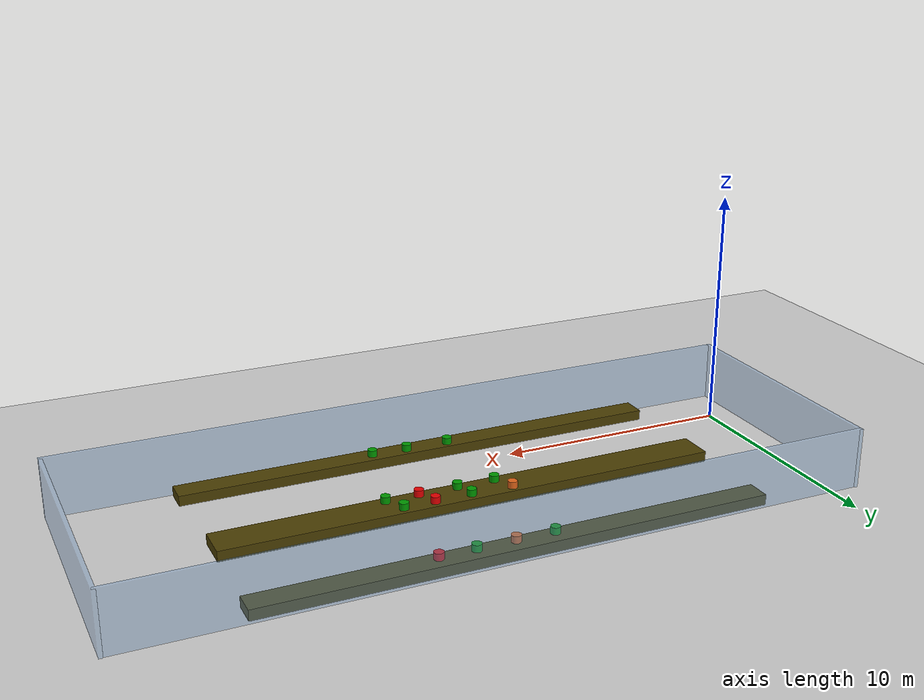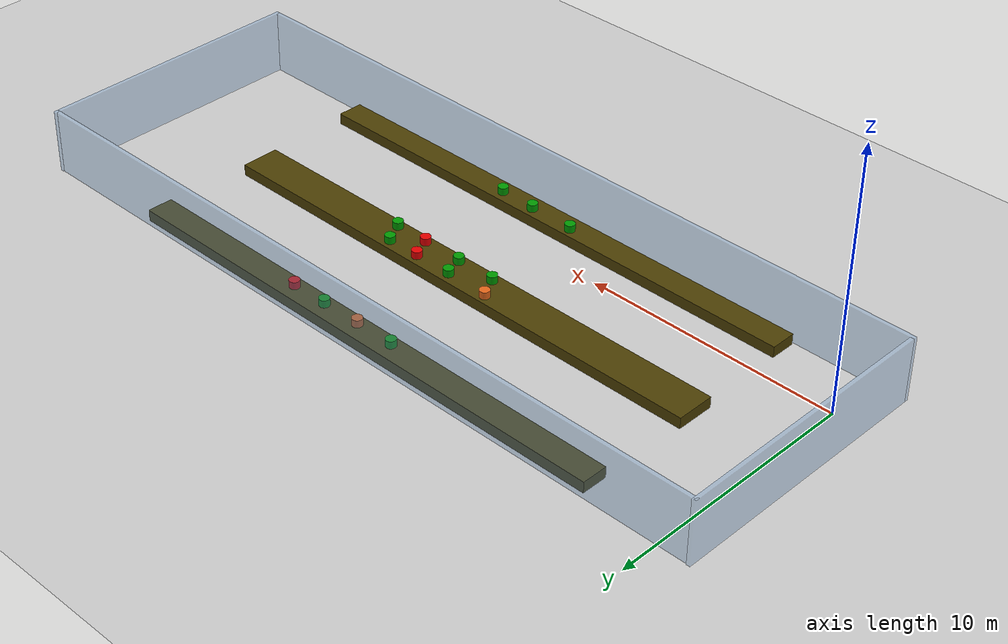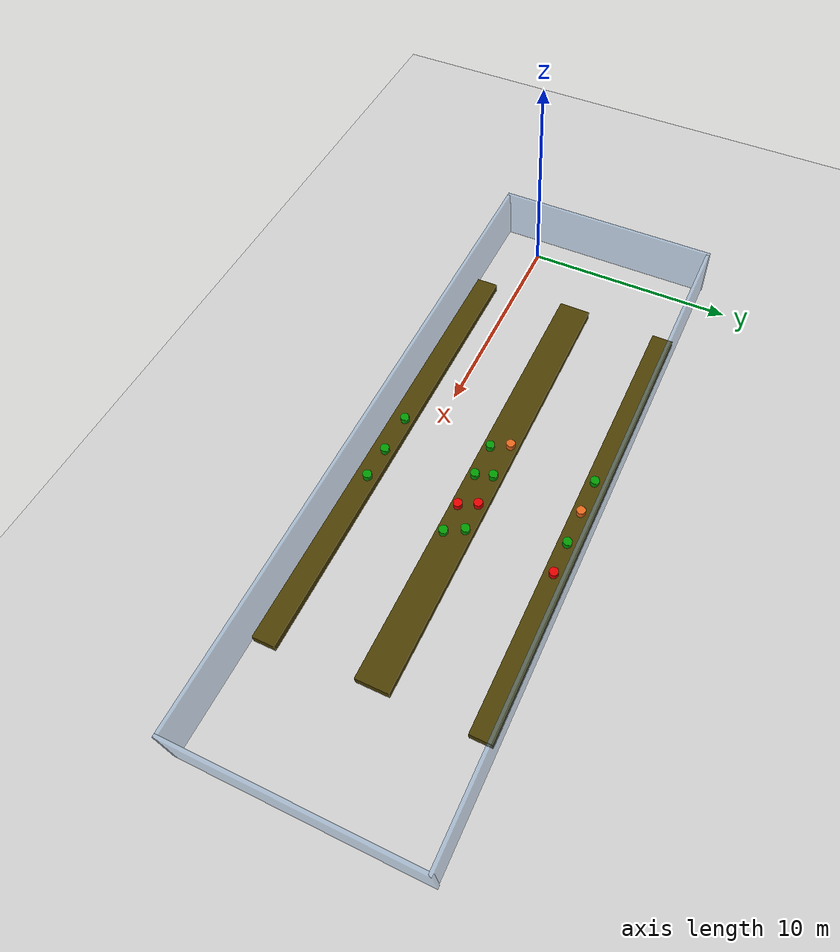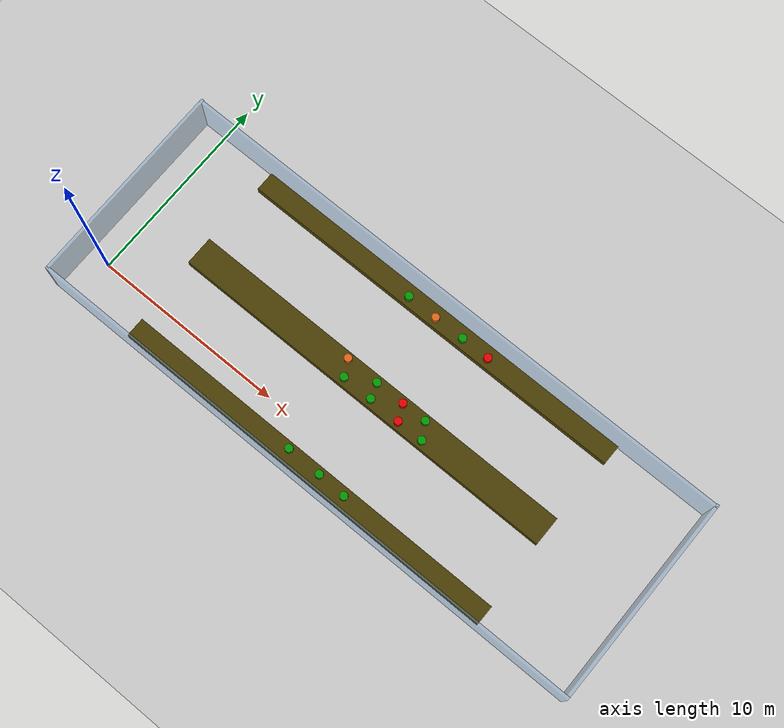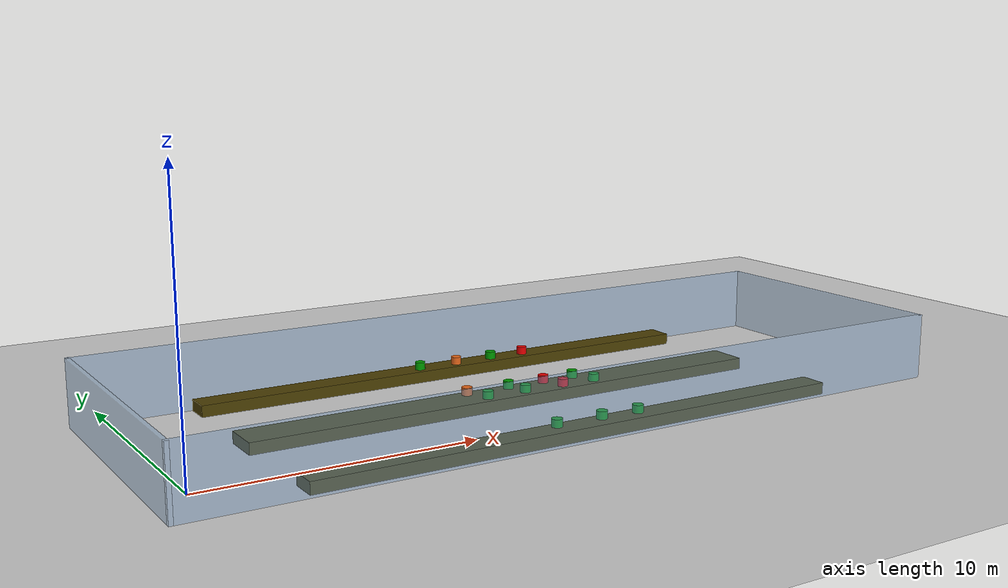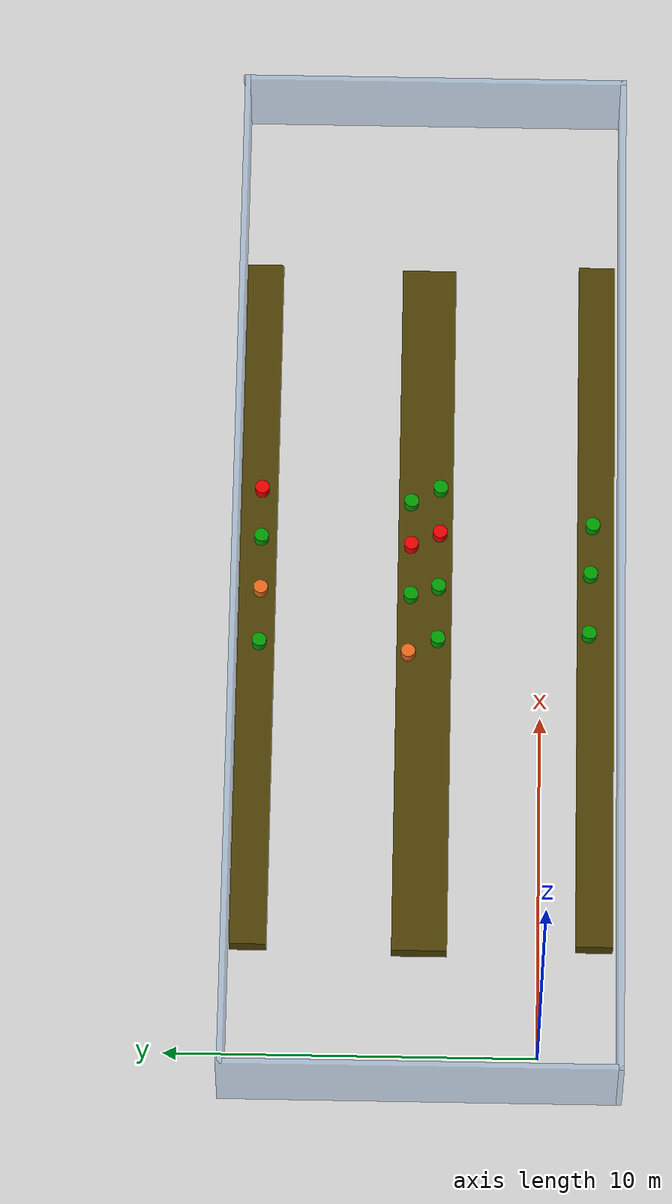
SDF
<sdf version="1.7">
 <world name="default">
  <model name="ground_plane">
   <static>1</static>
   <link name="link">
    <collision name="collision">
     <geometry><plane><normal>0 0 1</normal><size>100 100</size></plane></geometry>
     <surface><friction><ode><mu>100</mu><mu2>50</mu2></ode></friction></surface>
    </collision>
    <visual name="visual">
     <cast_shadows>0</cast_shadows>
     <geometry><plane><normal>0 0 1</normal><size>100 100</size></plane></geometry>
     <material>
      <script><uri>file://media/materials/scripts/gazebo.material</uri><name>Gazebo/Grey</name></script>
     </material>
    </visual>
   </link>
  </model>
  <model name="Test_pot_green_clone_2">
   <link name="link_0">
    <inertial>
     <mass>0.044841</mass>
     <inertia>
      <ixx>0.00074807</ixx>
      <ixy>0</ixy>
      <ixz>0</ixz>
      <iyy>0.00074807</iyy>
      <iyz>0</iyz>
      <izz>0.00086495</izz>
     </inertia>
    </inertial>
    <pose>3e-06 1e-06 0 0 -0 0</pose>
    <visual name="visual">
     <geometry><cylinder><radius>0.196415</radius><length>0.290612</length></cylinder></geometry>
     <material>
      <lighting>1</lighting>
      <script><uri>file://media/materials/scripts/gazebo.material</uri><name>Gazebo/Grey</name></script>
      <shader type="pixel"><normal_map>__default__</normal_map></shader>
      <diffuse>0 0.6 0 0</diffuse>
      <ambient>0.3 0.3 0.3 1</ambient>
      <specular>0.01 0.01 0.01 1</specular>
      <emissive>0 0 0 1</emissive>
     </material>
    </visual>
    <collision name="collision">
     <geometry><cylinder><radius>0.196415</radius><length>0.290612</length></cylinder></geometry>
     <surface>
      <friction>
       <ode><mu>1</mu><mu2>1</mu2><fdir1>0 0 0</fdir1><slip1>0</slip1><slip2>0</slip2></ode>
       <torsional>
        <coefficient>1</coefficient>
        <patch_radius>0</patch_radius>
        <surface_radius>0</surface_radius>
        <use_patch_radius>1</use_patch_radius>
        <ode><slip>0</slip></ode>
       </torsional>
      </friction>
      <bounce><restitution_coefficient>0</restitution_coefficient><threshold>1e+06</threshold></bounce>
      <contact>
       <collide_without_contact>0</collide_without_contact>
       <collide_without_contact_bitmask>1</collide_without_contact_bitmask>
       <collide_bitmask>1</collide_bitmask>
       <ode>
        <soft_cfm>0</soft_cfm>
        <soft_erp>0.2</soft_erp>
        <kp>1e+13</kp>
        <kd>1</kd>
        <max_vel>0.01</max_vel>
        <min_depth>0</min_depth>
       </ode>
       <bullet>
        <split_impulse>1</split_impulse>
        <split_impulse_penetration_threshold>-0.01</split_impulse_penetration_threshold>
        <soft_cfm>0</soft_cfm>
        <soft_erp>0.2</soft_erp>
        <kp>1e+13</kp>
        <kd>1</kd>
       </bullet>
      </contact>
     </surface>
    </collision>
   </link>
   <static>0</static>
   <pose>11.96 7.71035 0.575578 4.9e-05 1e-06 -0.004177</pose>
  </model>
  <model name="Test_pot_green_clone_3">
   <link name="link_0">
    <inertial>
     <mass>0.044841</mass>
     <inertia>
      <ixx>0.00074807</ixx>
      <ixy>0</ixy>
      <ixz>0</ixz>
      <iyy>0.00074807</iyy>
      <iyz>0</iyz>
      <izz>0.00086495</izz>
     </inertia>
    </inertial>
    <pose>3e-06 1e-06 0 0 -0 0</pose>
    <visual name="visual">
     <geometry><cylinder><radius>0.196415</radius><length>0.290612</length></cylinder></geometry>
     <material>
      <lighting>1</lighting>
      <script><uri>file://media/materials/scripts/gazebo.material</uri><name>Gazebo/Grey</name></script>
      <shader type="pixel"><normal_map>__default__</normal_map></shader>
      <diffuse>0 0.6 0 0</diffuse>
      <ambient>0.3 0.3 0.3 1</ambient>
      <specular>0.01 0.01 0.01 1</specular>
      <emissive>0 0 0 1</emissive>
     </material>
    </visual>
    <collision name="collision">
     <geometry><cylinder><radius>0.196415</radius><length>0.290612</length></cylinder></geometry>
     <surface>
      <friction>
       <ode><mu>1</mu><mu2>1</mu2><fdir1>0 0 0</fdir1><slip1>0</slip1><slip2>0</slip2></ode>
       <torsional>
        <coefficient>1</coefficient>
        <patch_radius>0</patch_radius>
        <surface_radius>0</surface_radius>
        <use_patch_radius>1</use_patch_radius>
        <ode><slip>0</slip></ode>
       </torsional>
      </friction>
      <bounce><restitution_coefficient>0</restitution_coefficient><threshold>1e+06</threshold></bounce>
      <contact>
       <collide_without_contact>0</collide_without_contact>
       <collide_without_contact_bitmask>1</collide_without_contact_bitmask>
       <collide_bitmask>1</collide_bitmask>
       <ode>
        <soft_cfm>0</soft_cfm>
        <soft_erp>0.2</soft_erp>
        <kp>1e+13</kp>
        <kd>1</kd>
        <max_vel>0.01</max_vel>
        <min_depth>0</min_depth>
       </ode>
       <bullet>
        <split_impulse>1</split_impulse>
        <split_impulse_penetration_threshold>-0.01</split_impulse_penetration_threshold>
        <soft_cfm>0</soft_cfm>
        <soft_erp>0.2</soft_erp>
        <kp>1e+13</kp>
        <kd>1</kd>
       </bullet>
      </contact>
     </surface>
    </collision>
   </link>
   <static>0</static>
   <pose>15.1495 7.72388 0.575568 7e-06 -4e-06 -0.002778</pose>
  </model>
  <model name="Test_pot_orange_clone">
   <link name="link_0">
    <inertial>
     <mass>0.044841</mass>
     <inertia>
      <ixx>0.00074807</ixx>
      <ixy>0</ixy>
      <ixz>0</ixz>
      <iyy>0.00074807</iyy>
      <iyz>0</iyz>
      <izz>0.00086495</izz>
     </inertia>
    </inertial>
    <pose>3e-06 1e-06 -0 0 -0 0</pose>
    <visual name="visual">
     <geometry><cylinder><radius>0.196415</radius><length>0.290612</length></cylinder></geometry>
     <material>
      <lighting>1</lighting>
      <script><uri>file://media/materials/scripts/gazebo.material</uri><name>Gazebo/Grey</name></script>
      <shader type="pixel"><normal_map>__default__</normal_map></shader>
      <ambient>0.3 0.3 0.3 1</ambient>
      <diffuse>0.9 0.4 0.1 1</diffuse>
      <specular>0.01 0.01 0.01 1</specular>
      <emissive>0 0 0 1</emissive>
     </material>
    </visual>
    <collision name="collision">
     <geometry><cylinder><radius>0.196415</radius><length>0.290612</length></cylinder></geometry>
     <surface>
      <friction>
       <ode><mu>1</mu><mu2>1</mu2><fdir1>0 0 0</fdir1><slip1>0</slip1><slip2>0</slip2></ode>
       <torsional>
        <coefficient>1</coefficient>
        <patch_radius>0</patch_radius>
        <surface_radius>0</surface_radius>
        <use_patch_radius>1</use_patch_radius>
        <ode><slip>0</slip></ode>
       </torsional>
      </friction>
      <bounce><restitution_coefficient>0</restitution_coefficient><threshold>1e+06</threshold></bounce>
      <contact>
       <collide_without_contact>0</collide_without_contact>
       <collide_without_contact_bitmask>1</collide_without_contact_bitmask>
       <collide_bitmask>1</collide_bitmask>
       <ode>
        <soft_cfm>0</soft_cfm>
        <soft_erp>0.2</soft_erp>
        <kp>1e+13</kp>
        <kd>1</kd>
        <max_vel>0.01</max_vel>
        <min_depth>0</min_depth>
       </ode>
       <bullet>
        <split_impulse>1</split_impulse>
        <split_impulse_penetration_threshold>-0.01</split_impulse_penetration_threshold>
        <soft_cfm>0</soft_cfm>
        <soft_erp>0.2</soft_erp>
        <kp>1e+13</kp>
        <kd>1</kd>
       </bullet>
      </contact>
     </surface>
    </collision>
   </link>
   <static>0</static>
   <pose>13.5652 7.70667 0.57557 -3e-06 -2e-06 -0.00832</pose>
  </model>
  <model name="Test_pot_orange_clone_2">
   <link name="link_0">
    <inertial>
     <mass>0.044841</mass>
     <inertia>
      <ixx>0.00074807</ixx>
      <ixy>0</ixy>
      <ixz>0</ixz>
      <iyy>0.00074807</iyy>
      <iyz>0</iyz>
      <izz>0.00086495</izz>
     </inertia>
    </inertial>
    <pose>3e-06 1e-06 -0 0 -0 0</pose>
    <visual name="visual">
     <geometry><cylinder><radius>0.196415</radius><length>0.290612</length></cylinder></geometry>
     <material>
      <lighting>1</lighting>
      <script><uri>file://media/materials/scripts/gazebo.material</uri><name>Gazebo/Grey</name></script>
      <shader type="pixel"><normal_map>__default__</normal_map></shader>
      <ambient>0.3 0.3 0.3 1</ambient>
      <diffuse>0.9 0.4 0.1 1</diffuse>
      <specular>0.01 0.01 0.01 1</specular>
      <emissive>0 0 0 1</emissive>
     </material>
    </visual>
    <collision name="collision">
     <geometry><cylinder><radius>0.196415</radius><length>0.290612</length></cylinder></geometry>
     <surface>
      <friction>
       <ode><mu>1</mu><mu2>1</mu2><fdir1>0 0 0</fdir1><slip1>0</slip1><slip2>0</slip2></ode>
       <torsional>
        <coefficient>1</coefficient>
        <patch_radius>0</patch_radius>
        <surface_radius>0</surface_radius>
        <use_patch_radius>1</use_patch_radius>
        <ode><slip>0</slip></ode>
       </torsional>
      </friction>
      <bounce><restitution_coefficient>0</restitution_coefficient><threshold>1e+06</threshold></bounce>
      <contact>
       <collide_without_contact>0</collide_without_contact>
       <collide_without_contact_bitmask>1</collide_without_contact_bitmask>
       <collide_bitmask>1</collide_bitmask>
       <ode>
        <soft_cfm>0</soft_cfm>
        <soft_erp>0.2</soft_erp>
        <kp>1e+13</kp>
        <kd>1</kd>
        <max_vel>0.01</max_vel>
        <min_depth>0</min_depth>
       </ode>
       <bullet>
        <split_impulse>1</split_impulse>
        <split_impulse_penetration_threshold>-0.01</split_impulse_penetration_threshold>
        <soft_cfm>0</soft_cfm>
        <soft_erp>0.2</soft_erp>
        <kp>1e+13</kp>
        <kd>1</kd>
       </bullet>
      </contact>
     </surface>
    </collision>
   </link>
   <static>0</static>
   <pose>11.6959 3.62944 0.575588 3.2e-05 1e-06 0.000596</pose>
  </model>
  <model name="Test_pot_red_clone">
   <link name="link_0">
    <inertial>
     <mass>0.044841</mass>
     <inertia>
      <ixx>0.00074807</ixx>
      <ixy>0</ixy>
      <ixz>0</ixz>
      <iyy>0.00074807</iyy>
      <iyz>0</iyz>
      <izz>0.00086495</izz>
     </inertia>
    </inertial>
    <pose>3e-06 1e-06 -0 0 -0 0</pose>
    <visual name="visual">
     <geometry><cylinder><radius>0.196415</radius><length>0.290612</length></cylinder></geometry>
     <material>
      <lighting>1</lighting>
      <script><uri>file://media/materials/scripts/gazebo.material</uri><name>Gazebo/Grey</name></script>
      <shader type="pixel"><normal_map>__default__</normal_map></shader>
      <ambient>0.3 0.3 0.3 1</ambient>
      <diffuse>0.9 0 0 1</diffuse>
      <specular>0.01 0.01 0.01 1</specular>
      <emissive>0 0 0 1</emissive>
     </material>
    </visual>
    <collision name="collision">
     <geometry><cylinder><radius>0.196415</radius><length>0.290612</length></cylinder></geometry>
     <surface>
      <friction>
       <ode><mu>1</mu><mu2>1</mu2><fdir1>0 0 0</fdir1><slip1>0</slip1><slip2>0</slip2></ode>
       <torsional>
        <coefficient>1</coefficient>
        <patch_radius>0</patch_radius>
        <surface_radius>0</surface_radius>
        <use_patch_radius>1</use_patch_radius>
        <ode><slip>0</slip></ode>
       </torsional>
      </friction>
      <bounce><restitution_coefficient>0</restitution_coefficient><threshold>1e+06</threshold></bounce>
      <contact>
       <collide_without_contact>0</collide_without_contact>
       <collide_without_contact_bitmask>1</collide_without_contact_bitmask>
       <collide_bitmask>1</collide_bitmask>
       <ode>
        <soft_cfm>0</soft_cfm>
        <soft_erp>0.2</soft_erp>
        <kp>1e+13</kp>
        <kd>1</kd>
        <max_vel>0.01</max_vel>
        <min_depth>0</min_depth>
       </ode>
       <bullet>
        <split_impulse>1</split_impulse>
        <split_impulse_penetration_threshold>-0.01</split_impulse_penetration_threshold>
        <soft_cfm>0</soft_cfm>
        <soft_erp>0.2</soft_erp>
        <kp>1e+13</kp>
        <kd>1</kd>
       </bullet>
      </contact>
     </surface>
    </collision>
   </link>
   <static>0</static>
   <pose>16.6331 7.73149 0.575567 1.5e-05 -2e-06 -0.003564</pose>
  </model>
  <model name="Test_pot_red_clone_2">
   <link name="link_0">
    <inertial>
     <mass>0.044841</mass>
     <inertia>
      <ixx>0.00074807</ixx>
      <ixy>0</ixy>
      <ixz>0</ixz>
      <iyy>0.00074807</iyy>
      <iyz>0</iyz>
      <izz>0.00086495</izz>
     </inertia>
    </inertial>
    <pose>3e-06 1e-06 -0 0 -0 0</pose>
    <visual name="visual">
     <geometry><cylinder><radius>0.196415</radius><length>0.290612</length></cylinder></geometry>
     <material>
      <lighting>1</lighting>
      <script><uri>file://media/materials/scripts/gazebo.material</uri><name>Gazebo/Grey</name></script>
      <shader type="pixel"><normal_map>__default__</normal_map></shader>
      <ambient>0.3 0.3 0.3 1</ambient>
      <diffuse>0.9 0 0 1</diffuse>
      <specular>0.01 0.01 0.01 1</specular>
      <emissive>0 0 0 1</emissive>
     </material>
    </visual>
    <collision name="collision">
     <geometry><cylinder><radius>0.196415</radius><length>0.290612</length></cylinder></geometry>
     <surface>
      <friction>
       <ode><mu>1</mu><mu2>1</mu2><fdir1>0 0 0</fdir1><slip1>0</slip1><slip2>0</slip2></ode>
       <torsional>
        <coefficient>1</coefficient>
        <patch_radius>0</patch_radius>
        <surface_radius>0</surface_radius>
        <use_patch_radius>1</use_patch_radius>
        <ode><slip>0</slip></ode>
       </torsional>
      </friction>
      <bounce><restitution_coefficient>0</restitution_coefficient><threshold>1e+06</threshold></bounce>
      <contact>
       <collide_without_contact>0</collide_without_contact>
       <collide_without_contact_bitmask>1</collide_without_contact_bitmask>
       <collide_bitmask>1</collide_bitmask>
       <ode>
        <soft_cfm>0</soft_cfm>
        <soft_erp>0.2</soft_erp>
        <kp>1e+13</kp>
        <kd>1</kd>
        <max_vel>0.01</max_vel>
        <min_depth>0</min_depth>
       </ode>
       <bullet>
        <split_impulse>1</split_impulse>
        <split_impulse_penetration_threshold>-0.01</split_impulse_penetration_threshold>
        <soft_cfm>0</soft_cfm>
        <soft_erp>0.2</soft_erp>
        <kp>1e+13</kp>
        <kd>1</kd>
       </bullet>
      </contact>
     </surface>
    </collision>
   </link>
   <static>0</static>
   <pose>15.3405 2.80318 0.575578 -4e-05 1e-06 -0.001208</pose>
  </model>
  <model name="Test_pot_red_clone_8">
   <link name="link_0">
    <inertial>
     <mass>0.044841</mass>
     <inertia>
      <ixx>0.00074807</ixx>
      <ixy>0</ixy>
      <ixz>0</ixz>
      <iyy>0.00074807</iyy>
      <iyz>0</iyz>
      <izz>0.00086495</izz>
     </inertia>
    </inertial>
    <pose>3e-06 1e-06 -0 0 -0 0</pose>
    <visual name="visual">
     <geometry><cylinder><radius>0.196415</radius><length>0.290612</length></cylinder></geometry>
     <material>
      <lighting>1</lighting>
      <script><uri>file://media/materials/scripts/gazebo.material</uri><name>Gazebo/Grey</name></script>
      <shader type="pixel"><normal_map>__default__</normal_map></shader>
      <ambient>0.3 0.3 0.3 1</ambient>
      <diffuse>0.9 0 0 1</diffuse>
      <specular>0.01 0.01 0.01 1</specular>
      <emissive>0 0 0 1</emissive>
     </material>
    </visual>
    <collision name="collision">
     <geometry><cylinder><radius>0.196415</radius><length>0.290612</length></cylinder></geometry>
     <surface>
      <friction>
       <ode><mu>1</mu><mu2>1</mu2><fdir1>0 0 0</fdir1><slip1>0</slip1><slip2>0</slip2></ode>
       <torsional>
        <coefficient>1</coefficient>
        <patch_radius>0</patch_radius>
        <surface_radius>0</surface_radius>
        <use_patch_radius>1</use_patch_radius>
        <ode><slip>0</slip></ode>
       </torsional>
      </friction>
      <bounce><restitution_coefficient>0</restitution_coefficient><threshold>1e+06</threshold></bounce>
      <contact>
       <collide_without_contact>0</collide_without_contact>
       <collide_without_contact_bitmask>1</collide_without_contact_bitmask>
       <collide_bitmask>1</collide_bitmask>
       <ode>
        <soft_cfm>0</soft_cfm>
        <soft_erp>0.2</soft_erp>
        <kp>1e+13</kp>
        <kd>1</kd>
        <max_vel>0.01</max_vel>
        <min_depth>0</min_depth>
       </ode>
       <bullet>
        <split_impulse>1</split_impulse>
        <split_impulse_penetration_threshold>-0.01</split_impulse_penetration_threshold>
        <soft_cfm>0</soft_cfm>
        <soft_erp>0.2</soft_erp>
        <kp>1e+13</kp>
        <kd>1</kd>
       </bullet>
      </contact>
     </surface>
    </collision>
   </link>
   <static>0</static>
   <pose>14.977 3.59209 0.575572 -3.3e-05 2.8e-05 0.002682</pose>
  </model>
  <model name="Test_pot_green_clone_15">
   <link name="link_0">
    <inertial>
     <mass>0.044841</mass>
     <inertia>
      <ixx>0.00074807</ixx>
      <ixy>0</ixy>
      <ixz>0</ixz>
      <iyy>0.00074807</iyy>
      <iyz>0</iyz>
      <izz>0.00086495</izz>
     </inertia>
    </inertial>
    <pose>3e-06 1e-06 0 0 -0 0</pose>
    <visual name="visual">
     <geometry><cylinder><radius>0.196415</radius><length>0.290612</length></cylinder></geometry>
     <material>
      <lighting>1</lighting>
      <script><uri>file://media/materials/scripts/gazebo.material</uri><name>Gazebo/Grey</name></script>
      <shader type="pixel"><normal_map>__default__</normal_map></shader>
      <diffuse>0 0.6 0 0</diffuse>
      <ambient>0.3 0.3 0.3 1</ambient>
      <specular>0.01 0.01 0.01 1</specular>
      <emissive>0 0 0 1</emissive>
     </material>
    </visual>
    <collision name="collision">
     <geometry><cylinder><radius>0.196415</radius><length>0.290612</length></cylinder></geometry>
     <surface>
      <friction>
       <ode><mu>1</mu><mu2>1</mu2><fdir1>0 0 0</fdir1><slip1>0</slip1><slip2>0</slip2></ode>
       <torsional>
        <coefficient>1</coefficient>
        <patch_radius>0</patch_radius>
        <surface_radius>0</surface_radius>
        <use_patch_radius>1</use_patch_radius>
        <ode><slip>0</slip></ode>
       </torsional>
      </friction>
      <bounce><restitution_coefficient>0</restitution_coefficient><threshold>1e+06</threshold></bounce>
      <contact>
       <collide_without_contact>0</collide_without_contact>
       <collide_without_contact_bitmask>1</collide_without_contact_bitmask>
       <collide_bitmask>1</collide_bitmask>
       <ode>
        <soft_cfm>0</soft_cfm>
        <soft_erp>0.2</soft_erp>
        <kp>1e+13</kp>
        <kd>1</kd>
        <max_vel>0.01</max_vel>
        <min_depth>0</min_depth>
       </ode>
       <bullet>
        <split_impulse>1</split_impulse>
        <split_impulse_penetration_threshold>-0.01</split_impulse_penetration_threshold>
        <soft_cfm>0</soft_cfm>
        <soft_erp>0.2</soft_erp>
        <kp>1e+13</kp>
        <kd>1</kd>
       </bullet>
      </contact>
     </surface>
    </collision>
   </link>
   <static>0</static>
   <pose>12.115 2.82876 0.57558 -4.7e-05 1e-06 -0.000967</pose>
  </model>
  <model name="Test_pot_green_clone_16">
   <link name="link_0">
    <inertial>
     <mass>0.044841</mass>
     <inertia>
      <ixx>0.00074807</ixx>
      <ixy>0</ixy>
      <ixz>0</ixz>
      <iyy>0.00074807</iyy>
      <iyz>0</iyz>
      <izz>0.00086495</izz>
     </inertia>
    </inertial>
    <pose>3e-06 1e-06 0 0 -0 0</pose>
    <visual name="visual">
     <geometry><cylinder><radius>0.196415</radius><length>0.290612</length></cylinder></geometry>
     <material>
      <lighting>1</lighting>
      <script><uri>file://media/materials/scripts/gazebo.material</uri><name>Gazebo/Grey</name></script>
      <shader type="pixel"><normal_map>__default__</normal_map></shader>
      <diffuse>0 0.6 0 0</diffuse>
      <ambient>0.3 0.3 0.3 1</ambient>
      <specular>0.01 0.01 0.01 1</specular>
      <emissive>0 0 0 1</emissive>
     </material>
    </visual>
    <collision name="collision">
     <geometry><cylinder><radius>0.196415</radius><length>0.290612</length></cylinder></geometry>
     <surface>
      <friction>
       <ode><mu>1</mu><mu2>1</mu2><fdir1>0 0 0</fdir1><slip1>0</slip1><slip2>0</slip2></ode>
       <torsional>
        <coefficient>1</coefficient>
        <patch_radius>0</patch_radius>
        <surface_radius>0</surface_radius>
        <use_patch_radius>1</use_patch_radius>
        <ode><slip>0</slip></ode>
       </torsional>
      </friction>
      <bounce><restitution_coefficient>0</restitution_coefficient><threshold>1e+06</threshold></bounce>
      <contact>
       <collide_without_contact>0</collide_without_contact>
       <collide_without_contact_bitmask>1</collide_without_contact_bitmask>
       <collide_bitmask>1</collide_bitmask>
       <ode>
        <soft_cfm>0</soft_cfm>
        <soft_erp>0.2</soft_erp>
        <kp>1e+13</kp>
        <kd>1</kd>
        <max_vel>0.01</max_vel>
        <min_depth>0</min_depth>
       </ode>
       <bullet>
        <split_impulse>1</split_impulse>
        <split_impulse_penetration_threshold>-0.01</split_impulse_penetration_threshold>
        <soft_cfm>0</soft_cfm>
        <soft_erp>0.2</soft_erp>
        <kp>1e+13</kp>
        <kd>1</kd>
       </bullet>
      </contact>
     </surface>
    </collision>
   </link>
   <static>0</static>
   <pose>13.4455 3.58697 0.57558 -2.5e-05 -7e-06 -0.000929</pose>
  </model>
  <model name="Test_pot_green_clone_17">
   <link name="link_0">
    <inertial>
     <mass>0.044841</mass>
     <inertia>
      <ixx>0.00074807</ixx>
      <ixy>0</ixy>
      <ixz>0</ixz>
      <iyy>0.00074807</iyy>
      <iyz>0</iyz>
      <izz>0.00086495</izz>
     </inertia>
    </inertial>
    <pose>3e-06 1e-06 0 0 -0 0</pose>
    <visual name="visual">
     <geometry><cylinder><radius>0.196415</radius><length>0.290612</length></cylinder></geometry>
     <material>
      <lighting>1</lighting>
      <script><uri>file://media/materials/scripts/gazebo.material</uri><name>Gazebo/Grey</name></script>
      <shader type="pixel"><normal_map>__default__</normal_map></shader>
      <diffuse>0 0.6 0 0</diffuse>
      <ambient>0.3 0.3 0.3 1</ambient>
      <specular>0.01 0.01 0.01 1</specular>
      <emissive>0 0 0 1</emissive>
     </material>
    </visual>
    <collision name="collision">
     <geometry><cylinder><radius>0.196415</radius><length>0.290612</length></cylinder></geometry>
     <surface>
      <friction>
       <ode><mu>1</mu><mu2>1</mu2><fdir1>0 0 0</fdir1><slip1>0</slip1><slip2>0</slip2></ode>
       <torsional>
        <coefficient>1</coefficient>
        <patch_radius>0</patch_radius>
        <surface_radius>0</surface_radius>
        <use_patch_radius>1</use_patch_radius>
        <ode><slip>0</slip></ode>
       </torsional>
      </friction>
      <bounce><restitution_coefficient>0</restitution_coefficient><threshold>1e+06</threshold></bounce>
      <contact>
       <collide_without_contact>0</collide_without_contact>
       <collide_without_contact_bitmask>1</collide_without_contact_bitmask>
       <collide_bitmask>1</collide_bitmask>
       <ode>
        <soft_cfm>0</soft_cfm>
        <soft_erp>0.2</soft_erp>
        <kp>1e+13</kp>
        <kd>1</kd>
        <max_vel>0.01</max_vel>
        <min_depth>0</min_depth>
       </ode>
       <bullet>
        <split_impulse>1</split_impulse>
        <split_impulse_penetration_threshold>-0.01</split_impulse_penetration_threshold>
        <soft_cfm>0</soft_cfm>
        <soft_erp>0.2</soft_erp>
        <kp>1e+13</kp>
        <kd>1</kd>
       </bullet>
      </contact>
     </surface>
    </collision>
   </link>
   <static>0</static>
   <pose>13.7066 2.82213 0.574144 -0 2.1e-05 -0.001992</pose>
  </model>
  <model name="Test_pot_green_clone_18">
   <link name="link_0">
    <inertial>
     <mass>0.044841</mass>
     <inertia>
      <ixx>0.00074807</ixx>
      <ixy>0</ixy>
      <ixz>0</ixz>
      <iyy>0.00074807</iyy>
      <iyz>0</iyz>
      <izz>0.00086495</izz>
     </inertia>
    </inertial>
    <pose>3e-06 1e-06 0 0 -0 0</pose>
    <visual name="visual">
     <geometry><cylinder><radius>0.196415</radius><length>0.290612</length></cylinder></geometry>
     <material>
      <lighting>1</lighting>
      <script><uri>file://media/materials/scripts/gazebo.material</uri><name>Gazebo/Grey</name></script>
      <shader type="pixel"><normal_map>__default__</normal_map></shader>
      <diffuse>0 0.6 0 0</diffuse>
      <ambient>0.3 0.3 0.3 1</ambient>
      <specular>0.01 0.01 0.01 1</specular>
      <emissive>0 0 0 1</emissive>
     </material>
    </visual>
    <collision name="collision">
     <geometry><cylinder><radius>0.196415</radius><length>0.290612</length></cylinder></geometry>
     <surface>
      <friction>
       <ode><mu>1</mu><mu2>1</mu2><fdir1>0 0 0</fdir1><slip1>0</slip1><slip2>0</slip2></ode>
       <torsional>
        <coefficient>1</coefficient>
        <patch_radius>0</patch_radius>
        <surface_radius>0</surface_radius>
        <use_patch_radius>1</use_patch_radius>
        <ode><slip>0</slip></ode>
       </torsional>
      </friction>
      <bounce><restitution_coefficient>0</restitution_coefficient><threshold>1e+06</threshold></bounce>
      <contact>
       <collide_without_contact>0</collide_without_contact>
       <collide_without_contact_bitmask>1</collide_without_contact_bitmask>
       <collide_bitmask>1</collide_bitmask>
       <ode>
        <soft_cfm>0</soft_cfm>
        <soft_erp>0.2</soft_erp>
        <kp>1e+13</kp>
        <kd>1</kd>
        <max_vel>0.01</max_vel>
        <min_depth>0</min_depth>
       </ode>
       <bullet>
        <split_impulse>1</split_impulse>
        <split_impulse_penetration_threshold>-0.01</split_impulse_penetration_threshold>
        <soft_cfm>0</soft_cfm>
        <soft_erp>0.2</soft_erp>
        <kp>1e+13</kp>
        <kd>1</kd>
       </bullet>
      </contact>
     </surface>
    </collision>
   </link>
   <static>0</static>
   <pose>16.2869 3.60734 0.575589 -7.4e-05 9e-06 -0.002536</pose>
  </model>
  <model name="Test_pot_green_clone_19">
   <link name="link_0">
    <inertial>
     <mass>0.044841</mass>
     <inertia>
      <ixx>0.00074807</ixx>
      <ixy>0</ixy>
      <ixz>0</ixz>
      <iyy>0.00074807</iyy>
      <iyz>0</iyz>
      <izz>0.00086495</izz>
     </inertia>
    </inertial>
    <pose>3e-06 1e-06 0 0 -0 0</pose>
    <visual name="visual">
     <geometry><cylinder><radius>0.196415</radius><length>0.290612</length></cylinder></geometry>
     <material>
      <lighting>1</lighting>
      <script><uri>file://media/materials/scripts/gazebo.material</uri><name>Gazebo/Grey</name></script>
      <shader type="pixel"><normal_map>__default__</normal_map></shader>
      <diffuse>0 0.6 0 0</diffuse>
      <ambient>0.3 0.3 0.3 1</ambient>
      <specular>0.01 0.01 0.01 1</specular>
      <emissive>0 0 0 1</emissive>
     </material>
    </visual>
    <collision name="collision">
     <geometry><cylinder><radius>0.196415</radius><length>0.290612</length></cylinder></geometry>
     <surface>
      <friction>
       <ode><mu>1</mu><mu2>1</mu2><fdir1>0 0 0</fdir1><slip1>0</slip1><slip2>0</slip2></ode>
       <torsional>
        <coefficient>1</coefficient>
        <patch_radius>0</patch_radius>
        <surface_radius>0</surface_radius>
        <use_patch_radius>1</use_patch_radius>
        <ode><slip>0</slip></ode>
       </torsional>
      </friction>
      <bounce><restitution_coefficient>0</restitution_coefficient><threshold>1e+06</threshold></bounce>
      <contact>
       <collide_without_contact>0</collide_without_contact>
       <collide_without_contact_bitmask>1</collide_without_contact_bitmask>
       <collide_bitmask>1</collide_bitmask>
       <ode>
        <soft_cfm>0</soft_cfm>
        <soft_erp>0.2</soft_erp>
        <kp>1e+13</kp>
        <kd>1</kd>
        <max_vel>0.01</max_vel>
        <min_depth>0</min_depth>
       </ode>
       <bullet>
        <split_impulse>1</split_impulse>
        <split_impulse_penetration_threshold>-0.01</split_impulse_penetration_threshold>
        <soft_cfm>0</soft_cfm>
        <soft_erp>0.2</soft_erp>
        <kp>1e+13</kp>
        <kd>1</kd>
       </bullet>
      </contact>
     </surface>
    </collision>
   </link>
   <static>0</static>
   <pose>16.7255 2.80429 0.57551 1e-06 1e-06 -0.002488</pose>
  </model>
  <model name="Test_pot_green_clone_31">
   <link name="link_0">
    <inertial>
     <mass>0.044841</mass>
     <inertia>
      <ixx>0.00074807</ixx>
      <ixy>0</ixy>
      <ixz>0</ixz>
      <iyy>0.00074807</iyy>
      <iyz>0</iyz>
      <izz>0.00086495</izz>
     </inertia>
    </inertial>
    <pose>3e-06 1e-06 0 0 -0 0</pose>
    <visual name="visual">
     <geometry><cylinder><radius>0.196415</radius><length>0.290612</length></cylinder></geometry>
     <material>
      <lighting>1</lighting>
      <script><uri>file://media/materials/scripts/gazebo.material</uri><name>Gazebo/Grey</name></script>
      <shader type="pixel"><normal_map>__default__</normal_map></shader>
      <diffuse>0 0.6 0 0</diffuse>
      <ambient>0.3 0.3 0.3 1</ambient>
      <specular>0.01 0.01 0.01 1</specular>
      <emissive>0 0 0 1</emissive>
     </material>
    </visual>
    <collision name="collision">
     <geometry><cylinder><radius>0.196415</radius><length>0.290612</length></cylinder></geometry>
     <surface>
      <friction>
       <ode><mu>1</mu><mu2>1</mu2><fdir1>0 0 0</fdir1><slip1>0</slip1><slip2>0</slip2></ode>
       <torsional>
        <coefficient>1</coefficient>
        <patch_radius>0</patch_radius>
        <surface_radius>0</surface_radius>
        <use_patch_radius>1</use_patch_radius>
        <ode><slip>0</slip></ode>
       </torsional>
      </friction>
      <bounce><restitution_coefficient>0</restitution_coefficient><threshold>1e+06</threshold></bounce>
      <contact>
       <collide_without_contact>0</collide_without_contact>
       <collide_without_contact_bitmask>1</collide_without_contact_bitmask>
       <collide_bitmask>1</collide_bitmask>
       <ode>
        <soft_cfm>0</soft_cfm>
        <soft_erp>0.2</soft_erp>
        <kp>1e+13</kp>
        <kd>1</kd>
        <max_vel>0.01</max_vel>
        <min_depth>0</min_depth>
       </ode>
       <bullet>
        <split_impulse>1</split_impulse>
        <split_impulse_penetration_threshold>-0.01</split_impulse_penetration_threshold>
        <soft_cfm>0</soft_cfm>
        <soft_erp>0.2</soft_erp>
        <kp>1e+13</kp>
        <kd>1</kd>
       </bullet>
      </contact>
     </surface>
    </collision>
   </link>
   <static>0</static>
   <pose>12.3328 -1.3106 0.575577 -5.9e-05 -2.2e-05 -0.003682</pose>
  </model>
  <model name="Test_pot_green_clone_32">
   <link name="link_0">
    <inertial>
     <mass>0.044841</mass>
     <inertia>
      <ixx>0.00074807</ixx>
      <ixy>0</ixy>
      <ixz>0</ixz>
      <iyy>0.00074807</iyy>
      <iyz>0</iyz>
      <izz>0.00086495</izz>
     </inertia>
    </inertial>
    <pose>3e-06 1e-06 0 0 -0 0</pose>
    <visual name="visual">
     <geometry><cylinder><radius>0.196415</radius><length>0.290612</length></cylinder></geometry>
     <material>
      <lighting>1</lighting>
      <script><uri>file://media/materials/scripts/gazebo.material</uri><name>Gazebo/Grey</name></script>
      <shader type="pixel"><normal_map>__default__</normal_map></shader>
      <diffuse>0 0.6 0 0</diffuse>
      <ambient>0.3 0.3 0.3 1</ambient>
      <specular>0.01 0.01 0.01 1</specular>
      <emissive>0 0 0 1</emissive>
     </material>
    </visual>
    <collision name="collision">
     <geometry><cylinder><radius>0.196415</radius><length>0.290612</length></cylinder></geometry>
     <surface>
      <friction>
       <ode><mu>1</mu><mu2>1</mu2><fdir1>0 0 0</fdir1><slip1>0</slip1><slip2>0</slip2></ode>
       <torsional>
        <coefficient>1</coefficient>
        <patch_radius>0</patch_radius>
        <surface_radius>0</surface_radius>
        <use_patch_radius>1</use_patch_radius>
        <ode><slip>0</slip></ode>
       </torsional>
      </friction>
      <bounce><restitution_coefficient>0</restitution_coefficient><threshold>1e+06</threshold></bounce>
      <contact>
       <collide_without_contact>0</collide_without_contact>
       <collide_without_contact_bitmask>1</collide_without_contact_bitmask>
       <collide_bitmask>1</collide_bitmask>
       <ode>
        <soft_cfm>0</soft_cfm>
        <soft_erp>0.2</soft_erp>
        <kp>1e+13</kp>
        <kd>1</kd>
        <max_vel>0.01</max_vel>
        <min_depth>0</min_depth>
       </ode>
       <bullet>
        <split_impulse>1</split_impulse>
        <split_impulse_penetration_threshold>-0.01</split_impulse_penetration_threshold>
        <soft_cfm>0</soft_cfm>
        <soft_erp>0.2</soft_erp>
        <kp>1e+13</kp>
        <kd>1</kd>
       </bullet>
      </contact>
     </surface>
    </collision>
   </link>
   <static>0</static>
   <pose>14.1527 -1.3443 0.575583 -3e-05 -6e-06 -0.003032</pose>
  </model>
  <model name="Test_pot_green_clone_33">
   <link name="link_0">
    <inertial>
     <mass>0.044841</mass>
     <inertia>
      <ixx>0.00074807</ixx>
      <ixy>0</ixy>
      <ixz>0</ixz>
      <iyy>0.00074807</iyy>
      <iyz>0</iyz>
      <izz>0.00086495</izz>
     </inertia>
    </inertial>
    <pose>3e-06 1e-06 0 0 -0 0</pose>
    <visual name="visual">
     <geometry><cylinder><radius>0.196415</radius><length>0.290612</length></cylinder></geometry>
     <material>
      <lighting>1</lighting>
      <script><uri>file://media/materials/scripts/gazebo.material</uri><name>Gazebo/Grey</name></script>
      <shader type="pixel"><normal_map>__default__</normal_map></shader>
      <diffuse>0 0.6 0 0</diffuse>
      <ambient>0.3 0.3 0.3 1</ambient>
      <specular>0.01 0.01 0.01 1</specular>
      <emissive>0 0 0 1</emissive>
     </material>
    </visual>
    <collision name="collision">
     <geometry><cylinder><radius>0.196415</radius><length>0.290612</length></cylinder></geometry>
     <surface>
      <friction>
       <ode><mu>1</mu><mu2>1</mu2><fdir1>0 0 0</fdir1><slip1>0</slip1><slip2>0</slip2></ode>
       <torsional>
        <coefficient>1</coefficient>
        <patch_radius>0</patch_radius>
        <surface_radius>0</surface_radius>
        <use_patch_radius>1</use_patch_radius>
        <ode><slip>0</slip></ode>
       </torsional>
      </friction>
      <bounce><restitution_coefficient>0</restitution_coefficient><threshold>1e+06</threshold></bounce>
      <contact>
       <collide_without_contact>0</collide_without_contact>
       <collide_without_contact_bitmask>1</collide_without_contact_bitmask>
       <collide_bitmask>1</collide_bitmask>
       <ode>
        <soft_cfm>0</soft_cfm>
        <soft_erp>0.2</soft_erp>
        <kp>1e+13</kp>
        <kd>1</kd>
        <max_vel>0.01</max_vel>
        <min_depth>0</min_depth>
       </ode>
       <bullet>
        <split_impulse>1</split_impulse>
        <split_impulse_penetration_threshold>-0.01</split_impulse_penetration_threshold>
        <soft_cfm>0</soft_cfm>
        <soft_erp>0.2</soft_erp>
        <kp>1e+13</kp>
        <kd>1</kd>
       </bullet>
      </contact>
     </surface>
    </collision>
   </link>
   <static>0</static>
   <pose>15.6432 -1.40009 0.575583 -3e-05 -6e-06 -0.002925</pose>
  </model>
  <model name="Test_Bench_brown">
   <link name="link_1">
    <inertial>
     <mass>6.47546</mass>
     <inertia><ixx>0.639529</ixx><ixy>0</ixy><ixz>0</ixz><iyy>122.309</iyy><iyz>0</iyz><izz>122.749</izz></inertia>
    </inertial>
    <pose>0 4e-06 -0 0 -0 0</pose>
    <visual name="visual">
     <geometry><box><size>20.7351 1.49015 0.430283</size></box></geometry>
     <material>
      <lighting>1</lighting>
      <script><uri>file://media/materials/scripts/gazebo.material</uri><name>Gazebo/Grey</name></script>
      <shader type="pixel"><normal_map>__default__</normal_map></shader>
      <ambient>0.5 0.5 0.5 0.7</ambient>
      <diffuse>0.298 0.247 0.016 1</diffuse>
      <specular>0.01 0.01 0.01 1</specular>
      <emissive>0 0 0 1</emissive>
     </material>
    </visual>
    <collision name="collision">
     <geometry><box><size>20.7351 1.49015 0.430283</size></box></geometry>
     <surface>
      <friction>
       <ode><mu>1</mu><mu2>1</mu2><fdir1>0 0 0</fdir1><slip1>0</slip1><slip2>0</slip2></ode>
       <torsional>
        <coefficient>1</coefficient>
        <patch_radius>0</patch_radius>
        <surface_radius>0</surface_radius>
        <use_patch_radius>1</use_patch_radius>
        <ode><slip>0</slip></ode>
       </torsional>
      </friction>
      <bounce><restitution_coefficient>0</restitution_coefficient><threshold>1e+06</threshold></bounce>
      <contact>
       <collide_without_contact>0</collide_without_contact>
       <collide_without_contact_bitmask>1</collide_without_contact_bitmask>
       <collide_bitmask>1</collide_bitmask>
       <ode>
        <soft_cfm>0</soft_cfm>
        <soft_erp>0.2</soft_erp>
        <kp>1e+13</kp>
        <kd>1</kd>
        <max_vel>0.01</max_vel>
        <min_depth>0</min_depth>
       </ode>
       <bullet>
        <split_impulse>1</split_impulse>
        <split_impulse_penetration_threshold>-0.01</split_impulse_penetration_threshold>
        <soft_cfm>0</soft_cfm>
        <soft_erp>0.2</soft_erp>
        <kp>1e+13</kp>
        <kd>1</kd>
       </bullet>
      </contact>
     </surface>
    </collision>
   </link>
   <static>0</static>
   <pose>13.2876 3.20498 0.215113 1.2e-05 -0 1.4e-05</pose>
  </model>
  <model name="Test_Bench_brown_2">
   <link name="link_1">
    <inertial>
     <mass>6.47546</mass>
     <inertia><ixx>0.639529</ixx><ixy>0</ixy><ixz>0</ixz><iyy>122.309</iyy><iyz>0</iyz><izz>122.749</izz></inertia>
    </inertial>
    <pose>0 4e-06 -0 0 -0 0</pose>
    <visual name="visual">
     <geometry><box><size>20.7351 1 0.430283</size></box></geometry>
     <material>
      <lighting>1</lighting>
      <script><uri>file://media/materials/scripts/gazebo.material</uri><name>Gazebo/Grey</name></script>
      <shader type="pixel"><normal_map>__default__</normal_map></shader>
      <diffuse>0.298 0.247 0.016 1</diffuse>
      <ambient>0.3 0.3 0.3 1</ambient>
      <specular>0.01 0.01 0.01 1</specular>
      <emissive>0 0 0 1</emissive>
     </material>
    </visual>
    <collision name="collision">
     <geometry><box><size>20.7351 1 0.430283</size></box></geometry>
     <surface>
      <friction>
       <ode><mu>1</mu><mu2>1</mu2><fdir1>0 0 0</fdir1><slip1>0</slip1><slip2>0</slip2></ode>
       <torsional>
        <coefficient>1</coefficient>
        <patch_radius>0</patch_radius>
        <surface_radius>0</surface_radius>
        <use_patch_radius>1</use_patch_radius>
        <ode><slip>0</slip></ode>
       </torsional>
      </friction>
      <bounce><restitution_coefficient>0</restitution_coefficient><threshold>1e+06</threshold></bounce>
      <contact>
       <collide_without_contact>0</collide_without_contact>
       <collide_without_contact_bitmask>1</collide_without_contact_bitmask>
       <collide_bitmask>1</collide_bitmask>
       <ode>
        <soft_cfm>0</soft_cfm>
        <soft_erp>0.2</soft_erp>
        <kp>1e+13</kp>
        <kd>1</kd>
        <max_vel>0.01</max_vel>
        <min_depth>0</min_depth>
       </ode>
       <bullet>
        <split_impulse>1</split_impulse>
        <split_impulse_penetration_threshold>-0.01</split_impulse_penetration_threshold>
        <soft_cfm>0</soft_cfm>
        <soft_erp>0.2</soft_erp>
        <kp>1e+13</kp>
        <kd>1</kd>
       </bullet>
      </contact>
     </surface>
    </collision>
   </link>
   <static>0</static>
   <pose>13.466 -1.48809 0.215114 1e-05 -0 2.4e-05</pose>
  </model>
  <model name="Test_Bench_brown_3">
   <link name="link_1">
    <inertial>
     <mass>6.47546</mass>
     <inertia><ixx>0.639529</ixx><ixy>0</ixy><ixz>0</ixz><iyy>122.309</iyy><iyz>0</iyz><izz>122.749</izz></inertia>
    </inertial>
    <pose>0 4e-06 0 0 -0 0</pose>
    <visual name="visual">
     <geometry><box><size>20.7351 1 0.430283</size></box></geometry>
     <material>
      <lighting>1</lighting>
      <script><uri>file://media/materials/scripts/gazebo.material</uri><name>Gazebo/Grey</name></script>
      <shader type="pixel"><normal_map>__default__</normal_map></shader>
      <diffuse>0.298 0.247 0.016 1</diffuse>
      <ambient>0.3 0.3 0.3 1</ambient>
      <specular>0.01 0.01 0.01 1</specular>
      <emissive>0 0 0 1</emissive>
     </material>
    </visual>
    <collision name="collision">
     <geometry><box><size>20.7351 1 0.430283</size></box></geometry>
     <surface>
      <friction>
       <ode><mu>1</mu><mu2>1</mu2><fdir1>0 0 0</fdir1><slip1>0</slip1><slip2>0</slip2></ode>
       <torsional>
        <coefficient>1</coefficient>
        <patch_radius>0</patch_radius>
        <surface_radius>0</surface_radius>
        <use_patch_radius>1</use_patch_radius>
        <ode><slip>0</slip></ode>
       </torsional>
      </friction>
      <bounce><restitution_coefficient>0</restitution_coefficient><threshold>1e+06</threshold></bounce>
      <contact>
       <collide_without_contact>0</collide_without_contact>
       <collide_without_contact_bitmask>1</collide_without_contact_bitmask>
       <collide_bitmask>1</collide_bitmask>
       <ode>
        <soft_cfm>0</soft_cfm>
        <soft_erp>0.2</soft_erp>
        <kp>1e+13</kp>
        <kd>1</kd>
        <max_vel>0.01</max_vel>
        <min_depth>0</min_depth>
       </ode>
       <bullet>
        <split_impulse>1</split_impulse>
        <split_impulse_penetration_threshold>-0.01</split_impulse_penetration_threshold>
        <soft_cfm>0</soft_cfm>
        <soft_erp>0.2</soft_erp>
        <kp>1e+13</kp>
        <kd>1</kd>
       </bullet>
      </contact>
     </surface>
    </collision>
   </link>
   <static>0</static>
   <pose>13.4036 7.80624 0.215135 -1.4e-05 -0 4.4e-05</pose>
  </model>
  <model name="greenhouse2">
   <link name="Wall_2">
    <pose>-14.925 0 0 0 -0 1.5708</pose>
    <inertial>
     <mass>1</mass>
     <inertia><ixx>1</ixx><ixy>0</ixy><ixz>0</ixz><iyy>1</iyy><iyz>0</iyz><izz>1</izz></inertia>
    </inertial>
    <visual name="Wall_2_Visual">
     <pose>0 0 1.25 0 -0 0</pose>
     <geometry><box><size>10.7553 0.15 2.5</size></box></geometry>
     <material>
      <script><uri>file://media/materials/scripts/gazebo.material</uri><name>Gazebo/Grey</name></script>
      <ambient>0.443 0.624 0.812 1</ambient>
      <shader type="pixel"><normal_map>__default__</normal_map></shader>
      <diffuse>0.7 0.7 0.7 1</diffuse>
      <specular>0.01 0.01 0.01 1</specular>
      <emissive>0 0 0 1</emissive>
     </material>
     <meta><layer>0</layer></meta>
     <transparency>0.6</transparency>
    </visual>
    <collision name="Wall_2_Collision">
     <pose>0 0 1.25 0 -0 0</pose>
     <geometry><box><size>10.7553 0.15 2.5</size></box></geometry>
     <surface>
      <friction>
       <ode><mu>1</mu><mu2>1</mu2><fdir1>0 0 0</fdir1><slip1>0</slip1><slip2>0</slip2></ode>
       <torsional>
        <coefficient>1</coefficient>
        <patch_radius>0</patch_radius>
        <surface_radius>0</surface_radius>
        <use_patch_radius>1</use_patch_radius>
        <ode><slip>0</slip></ode>
       </torsional>
      </friction>
      <bounce><restitution_coefficient>0</restitution_coefficient><threshold>1e+06</threshold></bounce>
      <contact>
       <collide_without_contact>0</collide_without_contact>
       <collide_without_contact_bitmask>1</collide_without_contact_bitmask>
       <collide_bitmask>1</collide_bitmask>
       <ode>
        <soft_cfm>0</soft_cfm>
        <soft_erp>0.2</soft_erp>
        <kp>1e+13</kp>
        <kd>1</kd>
        <max_vel>0.01</max_vel>
        <min_depth>0</min_depth>
       </ode>
       <bullet>
        <split_impulse>1</split_impulse>
        <split_impulse_penetration_threshold>-0.01</split_impulse_penetration_threshold>
        <soft_cfm>0</soft_cfm>
        <soft_erp>0.2</soft_erp>
        <kp>1e+13</kp>
        <kd>1</kd>
       </bullet>
      </contact>
     </surface>
    </collision>
   </link>
   <link name="Wall_3">
    <pose>-1e-06 5.27205 0 0 -0 0</pose>
    <inertial>
     <mass>1</mass>
     <inertia><ixx>1</ixx><ixy>0</ixy><ixz>0</ixz><iyy>1</iyy><iyz>0</iyz><izz>1</izz></inertia>
    </inertial>
    <visual name="Wall_3_Visual">
     <pose>0 0 1.25 0 -0 0</pose>
     <geometry><box><size>30 0.15 2.5</size></box></geometry>
     <material>
      <script><uri>file://media/materials/scripts/gazebo.material</uri><name>Gazebo/Grey</name></script>
      <ambient>0.447 0.624 0.812 1</ambient>
      <shader type="pixel"><normal_map>__default__</normal_map></shader>
      <diffuse>0.7 0.7 0.7 1</diffuse>
      <specular>0.01 0.01 0.01 1</specular>
      <emissive>0 0 0 1</emissive>
     </material>
     <meta><layer>0</layer></meta>
     <transparency>0.6</transparency>
    </visual>
    <collision name="Wall_3_Collision">
     <pose>0 0 1.25 0 -0 0</pose>
     <geometry><box><size>30 0.15 2.5</size></box></geometry>
     <surface>
      <friction>
       <ode><mu>1</mu><mu2>1</mu2><fdir1>0 0 0</fdir1><slip1>0</slip1><slip2>0</slip2></ode>
       <torsional>
        <coefficient>1</coefficient>
        <patch_radius>0</patch_radius>
        <surface_radius>0</surface_radius>
        <use_patch_radius>1</use_patch_radius>
        <ode><slip>0</slip></ode>
       </torsional>
      </friction>
      <bounce><restitution_coefficient>0</restitution_coefficient><threshold>1e+06</threshold></bounce>
      <contact>
       <collide_without_contact>0</collide_without_contact>
       <collide_without_contact_bitmask>1</collide_without_contact_bitmask>
       <collide_bitmask>1</collide_bitmask>
       <ode>
        <soft_cfm>0</soft_cfm>
        <soft_erp>0.2</soft_erp>
        <kp>1e+13</kp>
        <kd>1</kd>
        <max_vel>0.01</max_vel>
        <min_depth>0</min_depth>
       </ode>
       <bullet>
        <split_impulse>1</split_impulse>
        <split_impulse_penetration_threshold>-0.01</split_impulse_penetration_threshold>
        <soft_cfm>0</soft_cfm>
        <soft_erp>0.2</soft_erp>
        <kp>1e+13</kp>
        <kd>1</kd>
       </bullet>
      </contact>
     </surface>
    </collision>
   </link>
   <link name="Wall_4">
    <pose>14.925 0 0 0 0 -1.5708</pose>
    <inertial>
     <mass>1</mass>
     <inertia><ixx>1</ixx><ixy>0</ixy><ixz>0</ixz><iyy>1</iyy><iyz>0</iyz><izz>1</izz></inertia>
    </inertial>
    <visual name="Wall_4_Visual">
     <pose>0 0 1.25 0 -0 0</pose>
     <geometry><box><size>10.7553 0.15 2.5</size></box></geometry>
     <material>
      <script><uri>file://media/materials/scripts/gazebo.material</uri><name>Gazebo/Grey</name></script>
      <ambient>0.447 0.624 0.812 1</ambient>
      <shader type="pixel"><normal_map>__default__</normal_map></shader>
      <diffuse>0.7 0.7 0.7 1</diffuse>
      <specular>0.01 0.01 0.01 1</specular>
      <emissive>0 0 0 1</emissive>
     </material>
     <meta><layer>0</layer></meta>
     <transparency>0.6</transparency>
    </visual>
    <collision name="Wall_4_Collision">
     <pose>0 0 1.25 0 -0 0</pose>
     <geometry><box><size>10.7553 0.15 2.5</size></box></geometry>
     <surface>
      <friction>
       <ode><mu>1</mu><mu2>1</mu2><fdir1>0 0 0</fdir1><slip1>0</slip1><slip2>0</slip2></ode>
       <torsional>
        <coefficient>1</coefficient>
        <patch_radius>0</patch_radius>
        <surface_radius>0</surface_radius>
        <use_patch_radius>1</use_patch_radius>
        <ode><slip>0</slip></ode>
       </torsional>
      </friction>
      <bounce><restitution_coefficient>0</restitution_coefficient><threshold>1e+06</threshold></bounce>
      <contact>
       <collide_without_contact>0</collide_without_contact>
       <collide_without_contact_bitmask>1</collide_without_contact_bitmask>
       <collide_bitmask>1</collide_bitmask>
       <ode>
        <soft_cfm>0</soft_cfm>
        <soft_erp>0.2</soft_erp>
        <kp>1e+13</kp>
        <kd>1</kd>
        <max_vel>0.01</max_vel>
        <min_depth>0</min_depth>
       </ode>
       <bullet>
        <split_impulse>1</split_impulse>
        <split_impulse_penetration_threshold>-0.01</split_impulse_penetration_threshold>
        <soft_cfm>0</soft_cfm>
        <soft_erp>0.2</soft_erp>
        <kp>1e+13</kp>
        <kd>1</kd>
       </bullet>
      </contact>
     </surface>
    </collision>
   </link>
   <link name="Wall_5">
    <pose>-1e-06 -5.30264 0 0 -0 3.14159</pose>
    <inertial>
     <mass>1</mass>
     <inertia><ixx>1</ixx><ixy>0</ixy><ixz>0</ixz><iyy>1</iyy><iyz>0</iyz><izz>1</izz></inertia>
    </inertial>
    <visual name="Wall_5_Visual">
     <pose>0 0 1.25 0 -0 0</pose>
     <geometry><box><size>30 0.15 2.5</size></box></geometry>
     <material>
      <script><uri>file://media/materials/scripts/gazebo.material</uri><name>Gazebo/Grey</name></script>
      <ambient>0.447 0.624 0.812 1</ambient>
      <shader type="pixel"><normal_map>__default__</normal_map></shader>
      <diffuse>0.447 0.624 0.812 1</diffuse>
      <specular>0.01 0.01 0.01 1</specular>
      <emissive>0 0 0 1</emissive>
     </material>
     <meta><layer>0</layer></meta>
     <transparency>0.6</transparency>
    </visual>
    <collision name="Wall_5_Collision">
     <pose>0 0 1.25 0 -0 0</pose>
     <geometry><box><size>30 0.15 2.5</size></box></geometry>
     <surface>
      <friction>
       <ode><mu>1</mu><mu2>1</mu2><fdir1>0 0 0</fdir1><slip1>0</slip1><slip2>0</slip2></ode>
       <torsional>
        <coefficient>1</coefficient>
        <patch_radius>0</patch_radius>
        <surface_radius>0</surface_radius>
        <use_patch_radius>1</use_patch_radius>
        <ode><slip>0</slip></ode>
       </torsional>
      </friction>
      <bounce><restitution_coefficient>0</restitution_coefficient><threshold>1e+06</threshold></bounce>
      <contact>
       <collide_without_contact>0</collide_without_contact>
       <collide_without_contact_bitmask>1</collide_without_contact_bitmask>
       <collide_bitmask>1</collide_bitmask>
       <ode>
        <soft_cfm>0</soft_cfm>
        <soft_erp>0.2</soft_erp>
        <kp>1e+13</kp>
        <kd>1</kd>
        <max_vel>0.01</max_vel>
        <min_depth>0</min_depth>
       </ode>
       <bullet>
        <split_impulse>1</split_impulse>
        <split_impulse_penetration_threshold>-0.01</split_impulse_penetration_threshold>
        <soft_cfm>0</soft_cfm>
        <soft_erp>0.2</soft_erp>
        <kp>1e+13</kp>
        <kd>1</kd>
       </bullet>
      </contact>
     </surface>
    </collision>
   </link>
   <static>1</static>
   <pose>13.7364 3.1427 0 0 -0 0</pose>
  </model>
 </world>
</sdf>
